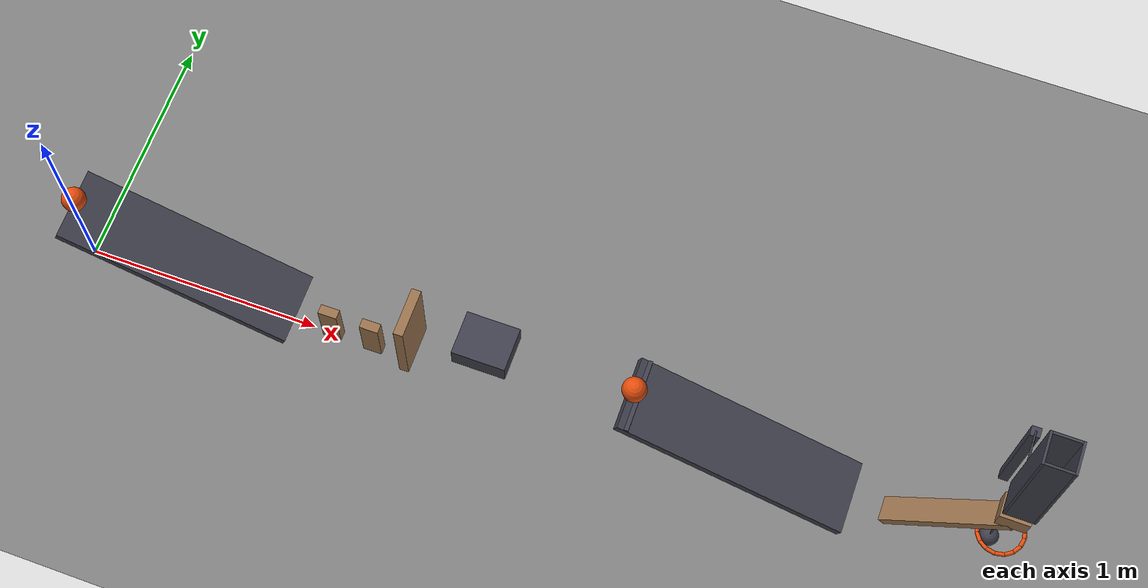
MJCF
<mujoco model="two_ramps_and_a_guided_ball_launch">
  <compiler angle="radian"/>
  <option timestep="0.002"/>
  <worldbody>
    <geom name="floor" type="plane" size="10 10 0.1" friction="0.7 0 0"/>
    <body name="ramp1">
      <geom name="ramp1" type="box" pos="0.469846 0 0.302216" size="0.5 0.15 0.02" euler="0 0.349066 0" friction="0.7 0 0" solref="0.01 1" rgba="0.25 0.25 0.3 1"/>
    </body>
    <body name="ball1" pos="0.0239414 0 0.539005">
      <freejoint/>
      <geom name="ball1" type="sphere" pos="0 0 0" size="0.05" mass="0.2" condim="6" friction="0.7 0 0" solref="0.01 1" rgba="0.9 0.3 0.05 1"/>
    </body>
    <body name="domino1" pos="1.08653 0 0.12">
      <freejoint/>
      <geom name="domino1" type="box" pos="0 0 0" size="0.04 0.02 0.12" mass="0.25" friction="0.7 0 0" solref="0.01 1" rgba="0.6 0.45 0.3 1"/>
    </body>
    <body name="domino2" pos="1.26653 0 0.12">
      <freejoint/>
      <geom name="domino2" type="box" pos="0 0 0" size="0.04 0.02 0.12" mass="0.25" friction="0.7 0 0" solref="0.01 1" rgba="0.6 0.45 0.3 1"/>
    </body>
    <body name="flap1" pos="1.44653 0 0.54">
      <joint name="flap1_hinge" type="hinge" pos="0 0 0" axis="0 1 0" limited="true" range="-1.13446 0" damping="0.04"/>
      <geom name="flap1" type="box" pos="0 0 -0.2" size="0.02 0.1 0.2" mass="0.3" friction="0.7 0 0" solref="0.01 1" rgba="0.6 0.45 0.3 1"/>
    </body>
    <body name="cart1" pos="1.77153 0 1000.47">
      <joint name="cart1_guide_hinge" type="hinge" pos="0 0 0" axis="0 1 0" limited="true" range="-0.000610865 0" damping="200000"/>
      <geom name="cart1" type="box" pos="0 0 -1000" size="0.11 0.09 0.05" mass="0.5" friction="0.7 0 0" solref="0.01 1" rgba="0.25 0.25 0.3 1"/>
    </body>
    <body name="ramp2">
      <geom name="ramp2" type="box" pos="2.82372 0 0.302216" size="0.5 0.15 0.02" euler="0 0.349066 0" friction="0.7 0 0" solref="0.01 1" rgba="0.25 0.25 0.3 1"/>
    </body>
    <body name="ball2" pos="2.37782 0 0.539005">
      <freejoint/>
      <geom name="ball2" type="sphere" pos="0 0 0" size="0.05" mass="0.2" condim="6" friction="0.7 0 0" solref="0.01 1" rgba="0.9 0.3 0.05 1"/>
    </body>
    <body name="ball2 release lip">
      <geom name="ball2 release lip" type="box" pos="2.39677 0 0.483005" size="0.009 0.15 0.007" friction="0.7 0 0" solref="0.01 1" rgba="0.25 0.25 0.3 1"/>
    </body>
    <body name="lever1" pos="3.64669 0 0.352132">
      <joint name="lever1_hinge" type="hinge" pos="0 0 0" axis="0 1 0" limited="true" range="-0.785398 0" stiffness="0.532576" springref="-0.785398" damping="0.04"/>
      <geom name="lever1" type="box" pos="5e-10 0 5e-10" size="0.3 0.05 0.02" euler="0 -0.785398 0" mass="0.499" friction="0.7 0 0" solref="0.01 1" rgba="0.6 0.45 0.3 1"/>
      <geom name="lever1 carrier" type="box" pos="0.212132 0 0.257132" size="0.06 0.05 0.045" mass="0.001" friction="0.7 0 0" solref="0.01 1" rgba="0.6 0.45 0.3 1"/>
    </body>
    <body name="ball3" pos="3.85882 0 0.704264">
      <freejoint/>
      <geom name="ball3" type="sphere" pos="0 0 0" size="0.05" mass="0.2" condim="6" friction="0.7 0 0" solref="0.01 1" rgba="0.9 0.3 0.05 1"/>
    </body>
    <body name="ball3 near guide">
      <geom name="ball3 near guide" type="box" pos="3.80082 0 1.03026" size="0.005 0.063 0.3" friction="0.7 0 0" solref="0.01 1" rgba="0.25 0.25 0.3 1"/>
    </body>
    <body name="ball3 far guide">
      <geom name="ball3 far guide" type="box" pos="3.91682 0 1.03026" size="0.005 0.063 0.3" friction="0.7 0 0" solref="0.01 1" rgba="0.25 0.25 0.3 1"/>
    </body>
    <body name="ball3 left guide">
      <geom name="ball3 left guide" type="box" pos="3.85882 0.058 1.03026" size="0.053 0.005 0.3" friction="0.7 0 0" solref="0.01 1" rgba="0.25 0.25 0.3 1"/>
    </body>
    <body name="ball3 right guide">
      <geom name="ball3 right guide" type="box" pos="3.85882 -0.058 1.03026" size="0.053 0.005 0.3" friction="0.7 0 0" solref="0.01 1" rgba="0.25 0.25 0.3 1"/>
    </body>
    <body name="ring1">
      <geom name="ring1_00" type="capsule" size="0.008" fromto="3.95082 0 0.354264 3.94381 0.0352069 0.354264" friction="0.7 0 0" solref="0.01 1" rgba="0.9 0.3 0.05 1"/>
      <geom name="ring1_01" type="capsule" size="0.008" fromto="3.94381 0.0352069 0.354264 3.92387 0.0650538 0.354264" friction="0.7 0 0" solref="0.01 1" rgba="0.9 0.3 0.05 1"/>
      <geom name="ring1_02" type="capsule" size="0.008" fromto="3.92387 0.0650538 0.354264 3.89402 0.0849969 0.354264" friction="0.7 0 0" solref="0.01 1" rgba="0.9 0.3 0.05 1"/>
      <geom name="ring1_03" type="capsule" size="0.008" fromto="3.89402 0.0849969 0.354264 3.85882 0.092 0.354264" friction="0.7 0 0" solref="0.01 1" rgba="0.9 0.3 0.05 1"/>
      <geom name="ring1_04" type="capsule" size="0.008" fromto="3.85882 0.092 0.354264 3.82361 0.0849969 0.354264" friction="0.7 0 0" solref="0.01 1" rgba="0.9 0.3 0.05 1"/>
      <geom name="ring1_05" type="capsule" size="0.008" fromto="3.82361 0.0849969 0.354264 3.79376 0.0650538 0.354264" friction="0.7 0 0" solref="0.01 1" rgba="0.9 0.3 0.05 1"/>
      <geom name="ring1_06" type="capsule" size="0.008" fromto="3.79376 0.0650538 0.354264 3.77382 0.0352069 0.354264" friction="0.7 0 0" solref="0.01 1" rgba="0.9 0.3 0.05 1"/>
      <geom name="ring1_07" type="capsule" size="0.008" fromto="3.77382 0.0352069 0.354264 3.76682 1.12668e-17 0.354264" friction="0.7 0 0" solref="0.01 1" rgba="0.9 0.3 0.05 1"/>
      <geom name="ring1_08" type="capsule" size="0.008" fromto="3.76682 1.12668e-17 0.354264 3.77382 -0.0352069 0.354264" friction="0.7 0 0" solref="0.01 1" rgba="0.9 0.3 0.05 1"/>
      <geom name="ring1_09" type="capsule" size="0.008" fromto="3.77382 -0.0352069 0.354264 3.79376 -0.0650538 0.354264" friction="0.7 0 0" solref="0.01 1" rgba="0.9 0.3 0.05 1"/>
      <geom name="ring1_10" type="capsule" size="0.008" fromto="3.79376 -0.0650538 0.354264 3.82361 -0.0849969 0.354264" friction="0.7 0 0" solref="0.01 1" rgba="0.9 0.3 0.05 1"/>
      <geom name="ring1_11" type="capsule" size="0.008" fromto="3.82361 -0.0849969 0.354264 3.85882 -0.092 0.354264" friction="0.7 0 0" solref="0.01 1" rgba="0.9 0.3 0.05 1"/>
      <geom name="ring1_12" type="capsule" size="0.008" fromto="3.85882 -0.092 0.354264 3.89402 -0.0849969 0.354264" friction="0.7 0 0" solref="0.01 1" rgba="0.9 0.3 0.05 1"/>
      <geom name="ring1_13" type="capsule" size="0.008" fromto="3.89402 -0.0849969 0.354264 3.92387 -0.0650538 0.354264" friction="0.7 0 0" solref="0.01 1" rgba="0.9 0.3 0.05 1"/>
      <geom name="ring1_14" type="capsule" size="0.008" fromto="3.92387 -0.0650538 0.354264 3.94381 -0.0352069 0.354264" friction="0.7 0 0" solref="0.01 1" rgba="0.9 0.3 0.05 1"/>
      <geom name="ring1_15" type="capsule" size="0.008" fromto="3.94381 -0.0352069 0.354264 3.95082 -2.25335e-17 0.354264" friction="0.7 0 0" solref="0.01 1" rgba="0.9 0.3 0.05 1"/>
    </body>
    <body name="pendulum1" pos="3.85882 0.07 0.547696">
      <joint name="pendulum1_hinge" type="hinge" pos="0 0 0" axis="1 0 0" limited="true" range="-1.0472 1.0472" damping="0.04"/>
      <geom name="pendulum1" type="sphere" pos="0 0 -0.5" size="0.04" mass="0.33" friction="0.7 0 0" solref="0.01 1" rgba="0.25 0.25 0.3 1"/>
      <geom name="pendulum1 rod" type="capsule" size="0.004" fromto="0 0 0 0 0 -0.5" mass="0.02" friction="0.7 0 0" solref="0.01 1" rgba="0.25 0.25 0.3 1"/>
    </body>
    <body name="pendulum1 stand">
      <geom name="pendulum1 stand" type="box" pos="3.85882 0.35 0.278848" size="0.02 0.02 0.278848" friction="0.7 0 0" solref="0.01 1" rgba="0.25 0.25 0.3 1"/>
    </body>
    <body name="pendulum1 support">
      <geom name="pendulum1 support" type="capsule" size="0.004" fromto="3.85882 0.07 0.557696 3.85882 0.35 0.557696" friction="0.7 0 0" solref="0.01 1" rgba="0.25 0.25 0.3 1"/>
    </body>
  </worldbody>
  <keyframe>
    <key name="start" qpos="0.0239414 0 0.539005 1 0 0 0 1.08653 0 0.12 1 0 0 0 1.26653 0 0.12 1 0 0 0 0 0 2.37782 0 0.539005 1 0 0 0 0 3.85882 0 0.704264 1 0 0 0 0" qvel="0 0 0 0 0 0 0 0 0 0 0 0 0 0 0 0 0 0 0 0 0 0 0 0 0 0 0 0 0 0 0 0 0 0"/>
  </keyframe>
</mujoco>
